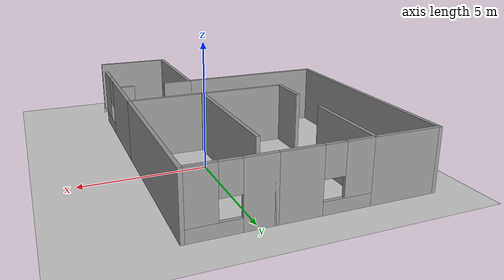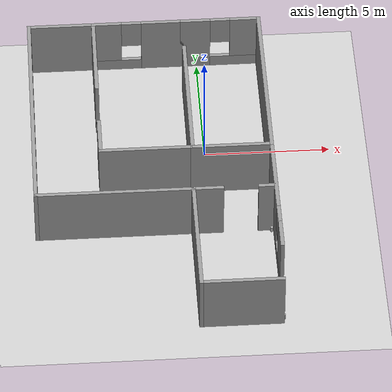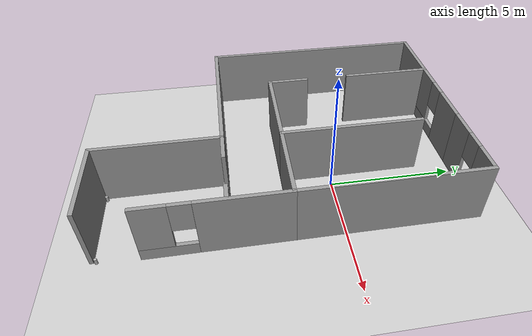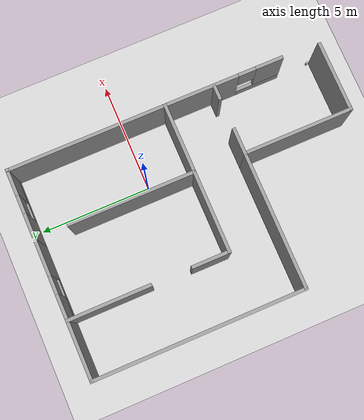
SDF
<sdf version="1.6">
 <world name="default">
  <plugin name="ardupilot_sitl_gazebo_plugin" filename="libardupilot_sitl_gazebo_plugin_rover.so">
   <UAV_MODEL>rover</UAV_MODEL>
  </plugin>
  <light name="sun" type="directional">
   <pose>0 0 10 0 -0 0</pose>
   <diffuse>0.8 0.8 0.8 1</diffuse>
   <specular>0.2 0.2 0.2 1</specular>
   <attenuation>
    <range>1000</range>
    <constant>0.9</constant>
    <linear>0.01</linear>
    <quadratic>0.001</quadratic>
   </attenuation>
   <direction>-0.5 0.1 -0.9</direction>
  </light>
  <model name="ground_plane">
   <static>1</static>
   <link name="link">
    <collision name="collision">
     <geometry><plane><normal>0 0 1</normal><size>100 100</size></plane></geometry>
     <surface><friction><ode><mu>100</mu><mu2>50</mu2></ode></friction></surface>
    </collision>
    <visual name="visual">
     <cast_shadows>0</cast_shadows>
     <geometry><plane><normal>0 0 1</normal><size>100 100</size></plane></geometry>
     <material>
      <script><uri>file://media/materials/scripts/gazebo.material</uri><name>Gazebo/Grey</name></script>
     </material>
    </visual>
   </link>
  </model>
  <gravity>0 0 -9.8</gravity>
  <magnetic_field>6e-06 2.3e-05 -4.2e-05</magnetic_field>
  <atmosphere type="adiabatic"/>
  <physics name="default_physics" default="0" type="ode">
   <max_step_size>0.001</max_step_size>
   <real_time_factor>1</real_time_factor>
   <real_time_update_rate>1000</real_time_update_rate>
  </physics>
  <scene><ambient>0.4 0.4 0.4 1</ambient><background>0.7 0.7 0.7 1</background><shadows>1</shadows></scene>
  <spherical_coordinates>
   <surface_model>EARTH_WGS84</surface_model>
   <latitude_deg>0</latitude_deg>
   <longitude_deg>0</longitude_deg>
   <elevation>0</elevation>
   <heading_deg>0</heading_deg>
  </spherical_coordinates>
  <light name="user_spot_light_0" type="spot">
   <pose>-0.306586 0.227094 1 0 -0 0</pose>
   <diffuse>0.5 0.5 0.5 1</diffuse>
   <specular>0.1 0.1 0.1 1</specular>
   <direction>0 0 -1</direction>
   <attenuation>
    <range>20</range>
    <constant>0.5</constant>
    <linear>0.01</linear>
    <quadratic>0.001</quadratic>
   </attenuation>
   <cast_shadows>0</cast_shadows>
   <spot><inner_angle>0.6</inner_angle><outer_angle>1</outer_angle><falloff>1</falloff></spot>
  </light>
  <model name="small_building">
   <pose>-2.13424 -1.93193 0 0 -0 1.570796</pose>
   <link name="Wall_14">
    <pose>7.1 -3.1 0 0 0 -1.5708</pose>
    <visual name="Wall_14_Visual_0">
     <pose>-1.01794 0 1.25 0 -0 0</pose>
     <geometry><box><size>1.21412 0.15 2.5</size></box></geometry>
     <material>
      <script><uri>file://media/materials/scripts/gazebo.material</uri><name>Gazebo/Grey</name></script>
      <ambient>1 1 1 1</ambient>
     </material>
     <meta><layer>0</layer></meta>
    </visual>
    <collision name="Wall_14_Collision_0">
     <geometry><box><size>1.21412 0.15 2.5</size></box></geometry>
     <pose>-1.01794 0 1.25 0 -0 0</pose>
    </collision>
    <visual name="Wall_14_Visual_1">
     <pose>0.607063 0 0.25 0 -0 0</pose>
     <geometry><box><size>2.03587 0.15 0.5</size></box></geometry>
     <material>
      <script><uri>file://media/materials/scripts/gazebo.material</uri><name>Gazebo/Grey</name></script>
      <ambient>1 1 1 1</ambient>
     </material>
     <meta><layer>0</layer></meta>
    </visual>
    <collision name="Wall_14_Collision_1">
     <geometry><box><size>2.03587 0.15 0.5</size></box></geometry>
     <pose>0.607063 0 0.25 0 -0 0</pose>
    </collision>
    <visual name="Wall_14_Visual_2">
     <pose>1.00706 0 1.5 0 -0 0</pose>
     <geometry><box><size>1.23588 0.15 2</size></box></geometry>
     <material>
      <script><uri>file://media/materials/scripts/gazebo.material</uri><name>Gazebo/Grey</name></script>
      <ambient>1 1 1 1</ambient>
     </material>
     <meta><layer>0</layer></meta>
    </visual>
    <collision name="Wall_14_Collision_2">
     <geometry><box><size>1.23588 0.15 2</size></box></geometry>
     <pose>1.00706 0 1.5 0 -0 0</pose>
    </collision>
    <visual name="Wall_14_Visual_3">
     <pose>-0.010875 0 1.9 0 -0 0</pose>
     <geometry><box><size>0.8 0.15 1.2</size></box></geometry>
     <material>
      <script><uri>file://media/materials/scripts/gazebo.material</uri><name>Gazebo/Grey</name></script>
      <ambient>1 1 1 1</ambient>
     </material>
     <meta><layer>0</layer></meta>
    </visual>
    <collision name="Wall_14_Collision_3">
     <geometry><box><size>0.8 0.15 1.2</size></box></geometry>
     <pose>-0.010875 0 1.9 0 -0 0</pose>
    </collision>
   </link>
   <link name="Wall_15">
    <collision name="Wall_15_Collision">
     <geometry><box><size>7.25 0.15 2.5</size></box></geometry>
     <pose>0 0 1.25 0 -0 0</pose>
    </collision>
    <visual name="Wall_15_Visual">
     <pose>0 0 1.25 0 -0 0</pose>
     <geometry><box><size>7.25 0.15 2.5</size></box></geometry>
     <material>
      <script><uri>file://media/materials/scripts/gazebo.material</uri><name>Gazebo/Grey</name></script>
      <ambient>1 1 1 1</ambient>
     </material>
     <meta><layer>0</layer></meta>
    </visual>
    <pose>3.55 -4.65 0 0 -0 3.14159</pose>
   </link>
   <link name="Wall_16">
    <collision name="Wall_16_Collision">
     <geometry><box><size>3.25 0.15 2.5</size></box></geometry>
     <pose>0 0 1.25 0 -0 0</pose>
    </collision>
    <visual name="Wall_16_Visual">
     <pose>0 0 1.25 0 -0 0</pose>
     <geometry><box><size>3.25 0.15 2.5</size></box></geometry>
     <material>
      <script><uri>file://media/materials/scripts/gazebo.material</uri><name>Gazebo/Grey</name></script>
      <ambient>1 1 1 1</ambient>
     </material>
     <meta><layer>0</layer></meta>
    </visual>
    <pose>-0 -3.1 0 0 -0 1.5708</pose>
   </link>
   <link name="Wall_17">
    <collision name="Wall_17_Collision">
     <geometry><box><size>5.75 0.15 2.5</size></box></geometry>
     <pose>0 0 1.25 0 -0 0</pose>
    </collision>
    <visual name="Wall_17_Visual">
     <pose>0 0 1.25 0 -0 0</pose>
     <geometry><box><size>5.75 0.15 2.5</size></box></geometry>
     <material>
      <script><uri>file://media/materials/scripts/gazebo.material</uri><name>Gazebo/Grey</name></script>
      <ambient>1 1 1 1</ambient>
     </material>
     <meta><layer>0</layer></meta>
    </visual>
    <pose>2.8 -1.55 0 0 -0 0</pose>
   </link>
   <link name="Wall_19">
    <pose>7.1 0.25 0 0 -0 1.5708</pose>
    <visual name="Wall_19_Visual_0">
     <pose>-1.00559 0 1.25 0 -0 0</pose>
     <geometry><box><size>1.73883 0.15 2.5</size></box></geometry>
     <material>
      <script><uri>file://media/materials/scripts/gazebo.material</uri><name>Gazebo/Grey</name></script>
      <ambient>1 1 1 1</ambient>
     </material>
     <meta><layer>0</layer></meta>
    </visual>
    <collision name="Wall_19_Collision_0">
     <geometry><box><size>1.73883 0.15 2.5</size></box></geometry>
     <pose>-1.00559 0 1.25 0 -0 0</pose>
    </collision>
    <visual name="Wall_19_Visual_1">
     <pose>0.869414 0 0.25 0 -0 0</pose>
     <geometry><box><size>2.01117 0.15 0.5</size></box></geometry>
     <material>
      <script><uri>file://media/materials/scripts/gazebo.material</uri><name>Gazebo/Grey</name></script>
      <ambient>1 1 1 1</ambient>
     </material>
     <meta><layer>0</layer></meta>
    </visual>
    <collision name="Wall_19_Collision_1">
     <geometry><box><size>2.01117 0.15 0.5</size></box></geometry>
     <pose>0.869414 0 0.25 0 -0 0</pose>
    </collision>
    <visual name="Wall_19_Visual_2">
     <pose>1.26941 0 1.5 0 -0 0</pose>
     <geometry><box><size>1.21117 0.15 2</size></box></geometry>
     <material>
      <script><uri>file://media/materials/scripts/gazebo.material</uri><name>Gazebo/Grey</name></script>
      <ambient>1 1 1 1</ambient>
     </material>
     <meta><layer>0</layer></meta>
    </visual>
    <collision name="Wall_19_Collision_2">
     <geometry><box><size>1.21117 0.15 2</size></box></geometry>
     <pose>1.26941 0 1.5 0 -0 0</pose>
    </collision>
    <visual name="Wall_19_Visual_3">
     <pose>0.263827 0 1.9 0 -0 0</pose>
     <geometry><box><size>0.8 0.15 1.2</size></box></geometry>
     <material>
      <script><uri>file://media/materials/scripts/gazebo.material</uri><name>Gazebo/Grey</name></script>
      <ambient>1 1 1 1</ambient>
     </material>
     <meta><layer>0</layer></meta>
    </visual>
    <collision name="Wall_19_Collision_3">
     <geometry><box><size>0.8 0.15 1.2</size></box></geometry>
     <pose>0.263827 0 1.9 0 -0 0</pose>
    </collision>
   </link>
   <link name="Wall_20">
    <collision name="Wall_20_Collision">
     <geometry><box><size>3.75 0.15 2.5</size></box></geometry>
     <pose>0 0 1.25 0 -0 0</pose>
    </collision>
    <visual name="Wall_20_Visual">
     <pose>0 0 1.25 0 -0 0</pose>
     <geometry><box><size>3.75 0.15 2.5</size></box></geometry>
     <material>
      <script><uri>file://media/materials/scripts/gazebo.material</uri><name>Gazebo/Grey</name></script>
      <ambient>1 1 1 1</ambient>
     </material>
     <meta><layer>0</layer></meta>
    </visual>
    <pose>5.3 2.05 0 0 -0 3.14159</pose>
   </link>
   <link name="Wall_22">
    <collision name="Wall_22_Collision">
     <geometry><box><size>3.75 0.15 2.5</size></box></geometry>
     <pose>0 0 1.25 0 -0 0</pose>
    </collision>
    <visual name="Wall_22_Visual">
     <pose>0 0 1.25 0 -0 0</pose>
     <geometry><box><size>3.75 0.15 2.5</size></box></geometry>
     <material>
      <script><uri>file://media/materials/scripts/gazebo.material</uri><name>Gazebo/Grey</name></script>
      <ambient>1 1 1 1</ambient>
     </material>
     <meta><layer>0</layer></meta>
    </visual>
    <pose>-0 0.25 0 0 -0 1.5708</pose>
   </link>
   <link name="Wall_23">
    <collision name="Wall_23_Collision">
     <geometry><box><size>1.75 0.15 2.5</size></box></geometry>
     <pose>0 0 1.25 0 -0 0</pose>
    </collision>
    <visual name="Wall_23_Visual">
     <pose>0 0 1.25 0 -0 0</pose>
     <geometry><box><size>1.75 0.15 2.5</size></box></geometry>
     <material>
      <script><uri>file://media/materials/scripts/gazebo.material</uri><name>Gazebo/Grey</name></script>
      <ambient>1 1 1 1</ambient>
     </material>
     <meta><layer>0</layer></meta>
    </visual>
    <pose>0.8 2.05 0 0 -0 0</pose>
   </link>
   <link name="Wall_25">
    <collision name="Wall_25_Collision">
     <geometry><box><size>2.75 0.15 2.5</size></box></geometry>
     <pose>0 0 1.25 0 -0 0</pose>
    </collision>
    <visual name="Wall_25_Visual">
     <pose>0 0 1.25 0 -0 0</pose>
     <geometry><box><size>2.75 0.15 2.5</size></box></geometry>
     <material>
      <script><uri>file://media/materials/scripts/gazebo.material</uri><name>Gazebo/Grey</name></script>
      <ambient>1 1 1 1</ambient>
     </material>
     <meta><layer>0</layer></meta>
    </visual>
    <pose>7.1 3.35 0 0 -0 1.5708</pose>
   </link>
   <link name="Wall_26">
    <collision name="Wall_26_Collision">
     <geometry><box><size>9.5 0.15 2.5</size></box></geometry>
     <pose>0 0 1.25 0 -0 0</pose>
    </collision>
    <visual name="Wall_26_Visual">
     <pose>0 0 1.25 0 -0 0</pose>
     <geometry><box><size>9.5 0.15 2.5</size></box></geometry>
     <material>
      <script><uri>file://media/materials/scripts/gazebo.material</uri><name>Gazebo/Grey</name></script>
      <ambient>1 1 1 1</ambient>
     </material>
     <meta><layer>0</layer></meta>
    </visual>
    <pose>2.425 4.65 0 0 -0 3.14159</pose>
   </link>
   <link name="Wall_27">
    <collision name="Wall_27_Collision">
     <geometry><box><size>6.25 0.15 2.5</size></box></geometry>
     <pose>0 0 1.25 0 -0 0</pose>
    </collision>
    <visual name="Wall_27_Visual">
     <pose>0 0 1.25 0 -0 0</pose>
     <geometry><box><size>6.25 0.15 2.5</size></box></geometry>
     <material>
      <script><uri>file://media/materials/scripts/gazebo.material</uri><name>Gazebo/Grey</name></script>
      <ambient>1 1 1 1</ambient>
     </material>
     <meta><layer>0</layer></meta>
    </visual>
    <pose>-2.25 1.6 0 0 0 -1.5708</pose>
   </link>
   <link name="Wall_29">
    <collision name="Wall_29_Collision">
     <geometry><box><size>5 0.15 2.5</size></box></geometry>
     <pose>0 0 1.25 0 -0 0</pose>
    </collision>
    <visual name="Wall_29_Visual">
     <pose>0 0 1.25 0 -0 0</pose>
     <geometry><box><size>5 0.15 2.5</size></box></geometry>
     <material>
      <script><uri>file://media/materials/scripts/gazebo.material</uri><name>Gazebo/Grey</name></script>
      <ambient>1 1 1 1</ambient>
     </material>
     <meta><layer>0</layer></meta>
    </visual>
    <pose>-4.675 -1.45 0 0 -0 3.14159</pose>
   </link>
   <link name="Wall_35">
    <pose>-2.675 -4.65 0 0 -0 3.14159</pose>
    <visual name="Wall_35_Visual_0">
     <pose>-1.03184 0 1.25 0 -0 0</pose>
     <geometry><box><size>3.43633 0.15 2.5</size></box></geometry>
     <material>
      <script><uri>file://media/materials/scripts/gazebo.material</uri><name>Gazebo/Grey</name></script>
      <ambient>1 1 1 1</ambient>
     </material>
     <meta><layer>0</layer></meta>
    </visual>
    <collision name="Wall_35_Collision_0">
     <geometry><box><size>3.43633 0.15 2.5</size></box></geometry>
     <pose>-1.03184 0 1.25 0 -0 0</pose>
    </collision>
    <visual name="Wall_35_Visual_1">
     <pose>1.71816 0 0.25 0 -0 0</pose>
     <geometry><box><size>2.06367 0.15 0.5</size></box></geometry>
     <material>
      <script><uri>file://media/materials/scripts/gazebo.material</uri><name>Gazebo/Grey</name></script>
      <ambient>1 1 1 1</ambient>
     </material>
     <meta><layer>0</layer></meta>
    </visual>
    <collision name="Wall_35_Collision_1">
     <geometry><box><size>2.06367 0.15 0.5</size></box></geometry>
     <pose>1.71816 0 0.25 0 -0 0</pose>
    </collision>
    <visual name="Wall_35_Visual_2">
     <pose>2.11816 0 1.5 0 -0 0</pose>
     <geometry><box><size>1.26367 0.15 2</size></box></geometry>
     <material>
      <script><uri>file://media/materials/scripts/gazebo.material</uri><name>Gazebo/Grey</name></script>
      <ambient>1 1 1 1</ambient>
     </material>
     <meta><layer>0</layer></meta>
    </visual>
    <collision name="Wall_35_Collision_2">
     <geometry><box><size>1.26367 0.15 2</size></box></geometry>
     <pose>2.11816 0 1.5 0 -0 0</pose>
    </collision>
    <visual name="Wall_35_Visual_3">
     <pose>1.08633 0 1.9 0 -0 0</pose>
     <geometry><box><size>0.8 0.15 1.2</size></box></geometry>
     <material>
      <script><uri>file://media/materials/scripts/gazebo.material</uri><name>Gazebo/Grey</name></script>
      <ambient>1 1 1 1</ambient>
     </material>
     <meta><layer>0</layer></meta>
    </visual>
    <collision name="Wall_35_Collision_3">
     <geometry><box><size>0.8 0.15 1.2</size></box></geometry>
     <pose>1.08633 0 1.9 0 -0 0</pose>
    </collision>
   </link>
   <link name="Wall_37">
    <collision name="Wall_37_Collision">
     <geometry><box><size>1.25 0.15 2.5</size></box></geometry>
     <pose>0 0 1.25 0 -0 0</pose>
    </collision>
    <visual name="Wall_37_Visual">
     <pose>0 0 1.25 0 -0 0</pose>
     <geometry><box><size>1.25 0.15 2.5</size></box></geometry>
     <material>
      <script><uri>file://media/materials/scripts/gazebo.material</uri><name>Gazebo/Grey</name></script>
      <ambient>1 1 1 1</ambient>
     </material>
     <meta><layer>0</layer></meta>
    </visual>
    <pose>-2.25 -2 0 0 0 -1.5708</pose>
   </link>
   <link name="Wall_39">
    <collision name="Wall_39_Collision">
     <geometry><box><size>0.75 0.15 2.5</size></box></geometry>
     <pose>0 0 1.25 0 -0 0</pose>
    </collision>
    <visual name="Wall_39_Visual">
     <pose>0 0 1.25 0 -0 0</pose>
     <geometry><box><size>0.75 0.15 2.5</size></box></geometry>
     <material>
      <script><uri>file://media/materials/scripts/gazebo.material</uri><name>Gazebo/Grey</name></script>
      <ambient>1 1 1 1</ambient>
     </material>
     <meta><layer>0</layer></meta>
    </visual>
    <pose>-2.23969 -4.34574 0 0 -0 1.5708</pose>
   </link>
   <link name="Wall_41">
    <collision name="Wall_41_Collision">
     <geometry><box><size>3.25 0.15 2.5</size></box></geometry>
     <pose>0 0 1.25 0 -0 0</pose>
    </collision>
    <visual name="Wall_41_Visual">
     <pose>0 0 1.25 0 -0 0</pose>
     <geometry><box><size>3.25 0.15 2.5</size></box></geometry>
     <material>
      <script><uri>file://media/materials/scripts/gazebo.material</uri><name>Gazebo/Grey</name></script>
      <ambient>1 1 1 1</ambient>
     </material>
     <meta><layer>0</layer></meta>
    </visual>
    <pose>-7.1 -3 0 0 0 -1.5708</pose>
   </link>
   <static>1</static>
  </model>
  <model name="beer">
   <link name="link">
    <pose>0 0 0.115 0 -0 0</pose>
    <inertial>
     <mass>0.39</mass>
     <inertia><ixx>0.00058</ixx><ixy>0</ixy><ixz>0</ixz><iyy>0.00058</iyy><iyz>0</iyz><izz>0.00019</izz></inertia>
    </inertial>
    <collision name="collision">
     <geometry><cylinder><radius>0.055</radius><length>0.23</length></cylinder></geometry>
    </collision>
    <visual name="visual">
     <geometry><cylinder><radius>0.055</radius><length>0.23</length></cylinder></geometry>
     <material>
      <script>
       <uri>model://beer/materials/scripts</uri>
       <uri>model://beer/materials/textures</uri>
       <name>Beer/Diffuse</name>
      </script>
     </material>
    </visual>
   </link>
   <pose>-0.521692 -4.31228 0 0 -0 0</pose>
  </model>
  <model name="beer_0">
   <link name="link">
    <pose>0 0 0.115 0 -0 0</pose>
    <inertial>
     <mass>0.39</mass>
     <inertia><ixx>0.00058</ixx><ixy>0</ixy><ixz>0</ixz><iyy>0.00058</iyy><iyz>0</iyz><izz>0.00019</izz></inertia>
    </inertial>
    <collision name="collision">
     <geometry><cylinder><radius>0.055</radius><length>0.23</length></cylinder></geometry>
    </collision>
    <visual name="visual">
     <geometry><cylinder><radius>0.055</radius><length>0.23</length></cylinder></geometry>
     <material>
      <script>
       <uri>model://beer/materials/scripts</uri>
       <uri>model://beer/materials/textures</uri>
       <name>Beer/Diffuse</name>
      </script>
     </material>
    </visual>
   </link>
   <pose>2.37556 -4.29646 0 0 -0 0</pose>
  </model>
  <model name="beer_1">
   <link name="link">
    <pose>0 0 0.115 0 -0 0</pose>
    <inertial>
     <mass>0.39</mass>
     <inertia><ixx>0.00058</ixx><ixy>0</ixy><ixz>0</ixz><iyy>0.00058</iyy><iyz>0</iyz><izz>0.00019</izz></inertia>
    </inertial>
    <collision name="collision">
     <geometry><cylinder><radius>0.055</radius><length>0.23</length></cylinder></geometry>
    </collision>
    <visual name="visual">
     <geometry><cylinder><radius>0.055</radius><length>0.23</length></cylinder></geometry>
     <material>
      <script>
       <uri>model://beer/materials/scripts</uri>
       <uri>model://beer/materials/textures</uri>
       <name>Beer/Diffuse</name>
      </script>
     </material>
    </visual>
   </link>
   <pose>-0.489794 -8.89189 0 0 -0 0</pose>
  </model>
  <model name="beer_2">
   <link name="link">
    <pose>0 0 0.115 0 -0 0</pose>
    <inertial>
     <mass>0.39</mass>
     <inertia><ixx>0.00058</ixx><ixy>0</ixy><ixz>0</ixz><iyy>0.00058</iyy><iyz>0</iyz><izz>0.00019</izz></inertia>
    </inertial>
    <collision name="collision">
     <geometry><cylinder><radius>0.055</radius><length>0.23</length></cylinder></geometry>
    </collision>
    <visual name="visual">
     <geometry><cylinder><radius>0.055</radius><length>0.23</length></cylinder></geometry>
     <material>
      <script>
       <uri>model://beer/materials/scripts</uri>
       <uri>model://beer/materials/textures</uri>
       <name>Beer/Diffuse</name>
      </script>
     </material>
    </visual>
   </link>
   <pose>2.49956 -8.86415 0 0 -0 0</pose>
  </model>
  <plugin filename="libSimEventsPlugin.so" name="event_plugin">
   <region><name>bowl_room</name><volume><min>-0.41122 -1.735 -1</min><max>2.34 4.99 1</max></volume></region>
   <event>
    <name>bowl_room_event</name>
    <type>occupied</type>
    <region>bowl_room</region>
    <topic>~/region</topic>
    <msg_data>bowl_room</msg_data>
   </event>
   <region><name>coke_room__</name><volume><min>-4.0 -1.757 -1</min><max>-0.784 5.02 1</max></volume></region>
   <region><name>coke_room</name><volume><min>-1.41 3.99 -1</min><max>-0.41122 4.99 1</max></volume></region>
   <event>
    <name>coke_room_event</name>
    <type>occupied</type>
    <region>coke_room</region>
    <topic>~/region</topic>
    <msg_data>coke_room</msg_data>
   </event>
   <region><name>beer_room</name><volume><min>-0.48979 -8.89 -1</min><max>2.375 -4.3 1</max></volume></region>
   <event>
    <name>beer_room_event</name>
    <type>occupied</type>
    <region>beer_room</region>
    <topic>~/region</topic>
    <msg_data>beer_room</msg_data>
   </event>
   <region><name>maze_exit</name><volume><min>2.5 -8.86 -1</min><max>3.5 -7.38 1</max></volume></region>
   <event>
    <name>maze_exit_event</name>
    <type>occupied</type>
    <region>maze_exit</region>
    <topic>~/region</topic>
    <msg_data>exited_the_maze</msg_data>
   </event>
  </plugin>
 </world>
</sdf>
